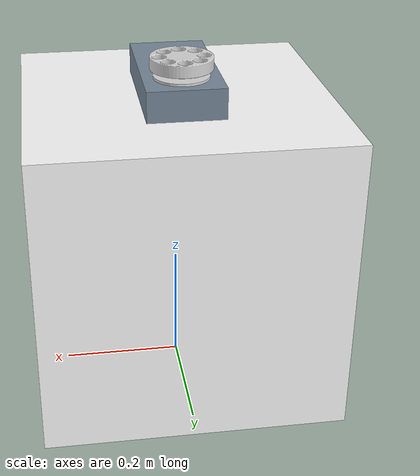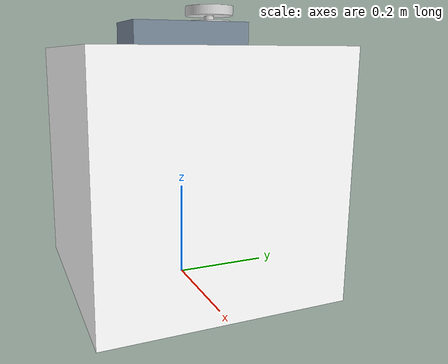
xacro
<?xml version="1.0"?>
<robot  name="rotary_table_v2" xmlns:xacro="http://www.ros.org/wiki/xacro">

    <!--              Constants               -->
    <xacro:property name="DEG2RAD" value="0.01745329252" />
    <xacro:property name="RED2DEG" value="57.295779513" />
    <xacro:property name="M_PI" value="3.141592" />
    <xacro:property name="box_size_x" value="0.5" />
    <xacro:property name="box_size_y" value="0.5" />
    <xacro:property name="box_size_z" value="0.5" />
    <xacro:property name="base_size_x" value="0.125" />
    <xacro:property name="base_size_y" value="0.245" />
    <xacro:property name="base_size_z" value="0.05" />
    <xacro:property name="base_circle_length" value="0.004" />
    <xacro:property name="base_circle_radius" value="0.045" />
    <xacro:property name="motor_shaft_length" value="0.01" />
    <xacro:property name="motor_shaft_radius" value="0.01" />
    <xacro:property name="rotation_disc_height" value="0.00" />
    <xacro:property name="pick_hore_radius" value="0.035" />
    <xacro:property name="pick_offset_z" value="0.02" />

    <!-- Import all Gazebo-customization elements, including Gazebo colors -->
    <xacro:include filename="$(find scara_v2_full_description)/urdf/rotary_table_v2_gazebo.gazebo" />

    <!--        Import Material colors        -->
    <xacro:include filename="$(find scara_v2_full_description)/urdf/materials.xacro" />

    <link name="world"/>
    <!--Casual box-->
    <link name="casualBox">
        <inertial>
            <origin xyz="0 0 0" rpy="0 0 0" />
            <mass value="1" />
            <inertia ixx="1" ixy="0" ixz="0"
                     iyy="1" iyz="0"
                     izz="1" />
        </inertial>
        <visual>
            <origin xyz="0 0 0" rpy="0 0 0"/>
            <geometry>
                <box size="${box_size_x} ${box_size_y} ${box_size_z}"/>
            </geometry>
            <material name="white" />
        </visual>
        <collision>
            <origin xyz="0 0 0" rpy="0 0 0" />
            <geometry>
                <box size="${box_size_x} ${box_size_y} ${box_size_z}"/>
            </geometry>
        </collision>
    </link>
    <joint name="world_to_casualBox" type="fixed">
        <parent link="world"/>
        <child link="casualBox"/>
        <origin xyz="0 0 ${box_size_z/2}" rpy="0 0 0" />
        <axis xyz="1 0 0" />
    </joint>

    <!-- Link and Joint definitions  -->
    <link name="base">
        <inertial>
            <origin xyz="0 0 0" rpy="0 0 0" />
            <mass value="1" />
            <inertia ixx="1" ixy="0" ixz="0"
                     iyy="1" iyz="0"
                     izz="1" />
        </inertial>
        <visual>
            <origin xyz="0 0 0" rpy="0 0 0"/>
            <geometry>
                <box size="${base_size_x} ${base_size_y} ${base_size_z}"/>
            </geometry>
            <material name="sensoGray" />
        </visual>
        <collision>
            <origin xyz="0 0 0" rpy="0 0 0" />
            <geometry>
                <box size="${base_size_x} ${base_size_y} ${base_size_z}"/>
            </geometry>
        </collision>
    </link>
    <joint name="world_to_base" type="fixed">
        <parent link="casualBox"/>
        <child link="base"/>
        <origin xyz="0 0 ${base_size_z/2 + box_size_z/2}" rpy="0 0 0" />
        <axis xyz="1 0 0" />
    </joint>

    <link name="baseCircle">
        <inertial>
            <origin xyz="0 0 0" rpy="0 0 0" />
            <mass value="1" />
            <inertia ixx="1" ixy="0" ixz="0"
                     iyy="1" iyz="0"
                     izz="1" />
        </inertial>
        <visual>
            <origin xyz="0 0 0" rpy="0 0 0"/>
            <geometry>
                <cylinder length="${base_circle_length}" radius="${base_circle_radius}"/>
            </geometry>
            <material name="sensoSilver" />
        </visual>
        <collision>
            <origin xyz="0 0 0" rpy="0 0 0" />
            <geometry>
                <cylinder length="${base_circle_length}" radius="${base_circle_radius}"/>
            </geometry>
        </collision>
    </link>
    <joint name="base_to_baseCircle" type="fixed">
        <parent link="base"/>
        <child link="baseCircle"/>
        <origin xyz="0 ${base_size_y/4} ${base_circle_length/2 + base_size_z/2}" rpy="0 0 0"/>
        <axis xyz="1 0 0" />
    </joint>

    <link name="motorShaftLink">
        <inertial>
            <origin xyz="0 0 0" rpy="0 0 0" />
            <mass value="1" />
            <inertia ixx="1" ixy="0" ixz="0"
                     iyy="1" iyz="0"
                     izz="1" />
        </inertial>
        <visual>
            <origin xyz="0 0 0" rpy="0 0 0"/>
            <geometry>
                <cylinder length="${motor_shaft_length}" radius="${motor_shaft_radius}"/>
            </geometry>
            <material name="sensoSilver" />
        </visual>
        <collision>
            <origin xyz="0 0 0" rpy="0 0 0" />
            <geometry>
                <cylinder length="${motor_shaft_length - 0.002}" radius="${motor_shaft_radius - 0.002}"/>
            </geometry>
        </collision>
    </link>
    <joint name="baseCircle_to_motorShaftLink" type="fixed">
        <parent link="baseCircle"/>
        <child link="motorShaftLink"/>
        <origin xyz="0 0 ${motor_shaft_length/2 + base_circle_length/2}" rpy="0 0 0"/>
        <axis xyz="0 0 1" />
    </joint>

    <link name="rotationDisc">
        <inertial>
            <origin xyz="0 0 0" rpy="0 0 0" />
            <mass value="1" />
            <inertia ixx="1" ixy="0" ixz="0"
                     iyy="1" iyz="0"
                     izz="1" />
        </inertial>
        <visual>
            <origin xyz="0 0 0" rpy="0 0 0"/>
            <geometry>
                <mesh filename="package://scara_v2_with_gripper/meshes/rotaryTablePlate.STL"/>
            </geometry>
            <material name="sensoSilver" />
        </visual>
        <collision>
            <origin xyz="0 0 0" rpy="0 0 0" />
            <geometry>
                <mesh filename="package://scara_v2_with_gripper/meshes/rotaryTablePlate.STL"/>
            </geometry>
        </collision>
    </link>
    <joint name="rotary_table_joint" type="revolute">    <!-- joint name base_link1_to_link1-->
        <parent link="motorShaftLink"/>
        <child link="rotationDisc"/>
        <origin xyz="0 0 ${motor_shaft_length/2 + rotation_disc_height}" rpy="0 0 0"/>
        <axis xyz="0 0 1" />
        <limit effort="100" lower="0" upper="${2*M_PI}" velocity="0.5"/>
    </joint>

    <link name="pickHole1"/>
    <joint name="joint_to_pickHole1" type="fixed">
        <parent link="rotationDisc" />
        <child link="pickHole1" />
        <origin xyz="${pick_hore_radius*0} ${pick_hore_radius*1} ${pick_offset_z}" rpy="0 0 ${M_PI/2}" />
        <axis xyz="0 0 0" />
    </joint>

    <link name="pickHole2"/>
    <joint name="joint_to_pickHole2" type="fixed">
        <parent link="rotationDisc" />
        <child link="pickHole2" />
        <origin xyz="${pick_hore_radius*(-0.7071)} ${pick_hore_radius*0.7071} ${pick_offset_z}" rpy="0 0 ${M_PI/4 + M_PI/2}" />
        <axis xyz="0 0 0" />
    </joint>

    <link name="pickHole3"/>
    <joint name="joint_to_pickHole3" type="fixed">
        <parent link="rotationDisc" />
        <child link="pickHole3" />
        <origin xyz="${pick_hore_radius*(-1)} ${pick_hore_radius*0} ${pick_offset_z}" rpy="0 0 ${M_PI}" />
        <axis xyz="0 0 0" />
    </joint>

    <link name="pickHole4"/>
    <joint name="joint_to_pickHole4" type="fixed">
        <parent link="rotationDisc" />
        <child link="pickHole4" />
        <origin xyz="${pick_hore_radius*(-0.7071)} ${pick_hore_radius*(-0.7071)} ${pick_offset_z}" rpy="0 0 ${M_PI/4 + M_PI}" />
        <axis xyz="0 0 0" />
    </joint>

    <link name="pickHole5"/>
    <joint name="joint_to_pickHole5" type="fixed">
        <parent link="rotationDisc" />
        <child link="pickHole5" />
        <origin xyz="${pick_hore_radius*0} ${pick_hore_radius*(-1)} ${pick_offset_z}" rpy="0 0 ${M_PI + M_PI/2}" />
        <axis xyz="0 0 0" />
    </joint>

    <link name="pickHole6"/>
    <joint name="joint_to_pickHole6" type="fixed">
        <parent link="rotationDisc" />
        <child link="pickHole6" />
        <origin xyz="${pick_hore_radius*0.7071} ${pick_hore_radius*(-0.7071)} ${pick_offset_z}" rpy="0 0 ${M_PI + M_PI/4 + M_PI/2}" />
        <axis xyz="0 0 0" />
    </joint>

    <link name="pickHole7"/>
    <joint name="joint_to_pickHole7" type="fixed">
        <parent link="rotationDisc" />
        <child link="pickHole7" />
        <origin xyz="${pick_hore_radius*1} ${pick_hore_radius*0} ${pick_offset_z}" rpy="0 0 ${0}" />
        <axis xyz="0 0 0" />
    </joint>

    <link name="pickHole8"/>
    <joint name="joint_to_pickHole8" type="fixed">
        <parent link="rotationDisc" />
        <child link="pickHole8" />
        <origin xyz="${pick_hore_radius*0.7071} ${pick_hore_radius*0.7071} ${pick_offset_z}" rpy="0 0 ${M_PI/4}" />
        <axis xyz="0 0 0" />
    </joint>

</robot>

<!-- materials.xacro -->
<robot>

    <!--______RViz Material Color definitions_______-->
    <material name="white">
        <color rgba="1 1 1 1"/>
    </material>
    <material name="blue">
        <color rgba="0 0 1 1"/>
    </material>
    <material name="red">
        <color rgba="1 0 0 1"/>
    </material>
    <material name="green">
        <color rgba="0 1 0 1"/>
    </material>
    <material name="sensoSilver">
        <color rgba="0.839216 0.839216 0.839216 1"/>
    </material>
    <material name="sensoBlack">
        <color rgba="0 0 0 1 "/>
    </material>
    <material name="sensoGray">
        <color rgba="0.466667 0.533333 0.6 1 "/>
    </material>
    <material name="sensoDarkGray">
        <color rgba="0.156863 0.156863 0.156863 1 "/>
    </material>

</robot>
